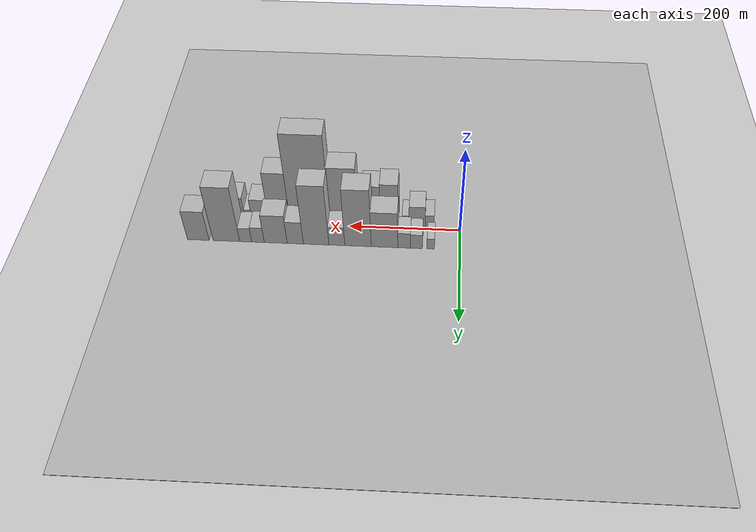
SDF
<?xml version="1.0" encoding="utf-8"?>

<sdf version="1.6">

   <world name="default">

      <gui fullscreen="0">

         <camera name="user_camera">

            <pose>-15 0 4.57585 0 0 0</pose>

            <view_controller>orbit</view_controller>

         </camera>

      </gui>

      <scene>

         <sky>

           <clouds>

             <speed>12</speed>

           </clouds>

         </sky>

         <ambient>0.4 0.4 0.4 1</ambient>

         <background>0.7 0.7 0.7 1</background>

         <shadows>1</shadows>

      </scene>

      <gravity>0 0 -9.8066</gravity>

      <magnetic_field>6e-06 2.3e-05 -4.2e-05</magnetic_field>

      <physics default="0" name="default_physics" type="ode">

         <ode>

            <solver>

               <type>quick</type>

               <iters>10</iters>

               <sor>1.0</sor>

               <use_dynamic_moi_rescaling>0</use_dynamic_moi_rescaling>

            </solver>

            <constraints>

               <cfm>0</cfm>

               <erp>0.2</erp>

               <contact_max_correcting_vel>100</contact_max_correcting_vel>

               <contact_surface_layer>0.001</contact_surface_layer>

            </constraints>

         </ode>

         <max_step_size>0.004</max_step_size>

         <real_time_factor>1</real_time_factor>

         <real_time_update_rate>250</real_time_update_rate>

      </physics>

      <light name="sun" type="directional">

         <cast_shadows>1</cast_shadows>

         <pose>0 0 10 0 0 0</pose>

         <diffuse>0.8 0.8 0.8 1</diffuse>

         <specular>0.2 0.2 0.2 1</specular>

         <attenuation>

            <range>1000</range>

            <constant>0.9</constant>

            <linear>0.01</linear>

            <quadratic>0.001</quadratic>

         </attenuation>

         <direction>-0.5 0.1 -0.9</direction>

      </light>

      <include>

         <name>ground_plane_1</name>

         <uri>model://HANNAS_ground_plane</uri>

         <pose>0 0 0  0 0 0</pose>

      </include>

      <include>

         <name>ground_plane_2</name>

         <uri>model://HANNAS_ground_plane</uri>

         <pose>100 0 0  0 0 0</pose>

      </include>

      <model name="building_1">

         <static>1</static>

         <pose frame="">51.7363 26.0000 0 0.000000 0.000000 1.570796</pose>

         <link name="link">

            <pose frame="">0 0 13.50 0 0 0</pose>

            <collision name="collision">

               <geometry>

                  <box>

                     <size>40.0000 13.4727 27.0000</size>

                  </box>

               </geometry>

               <max_contacts>10</max_contacts>

               <surface>

                  <contact>

                     <ode/>

                  </contact>

                  <bounce/>

                  <friction>

                     <torsional>

                        <ode/>

                     </torsional>

                     <ode/>

                  </friction>

               </surface>

            </collision>

            <visual name="visual">

               <cast_shadows>0</cast_shadows>

               <geometry>

                  <box>

                     <size>40.0000 13.4727 27.0000</size>

                  </box>

               </geometry>

               <material>

                  <script>

                     <uri>model://HANNAS_wall/materials/scripts</uri>

                     <uri>model://HANNAS_wall/materials/textures</uri>

                     <name>vrc/HANNAS_wall</name>

                  </script>

               </material>

            </visual>

            <self_collide>0</self_collide>

            <enable_wind>0</enable_wind>

            <kinematic>0</kinematic>

         </link>

      </model>

      <model name="building_2">

         <static>1</static>

         <pose frame="">77.1614 26.0000 0 0.000000 0.000000 1.570796</pose>

         <link name="link">

            <pose frame="">0 0 18.00 0 0 0</pose>

            <collision name="collision">

               <geometry>

                  <box>

                     <size>40.0000 21.3774 36.0000</size>

                  </box>

               </geometry>

               <max_contacts>10</max_contacts>

               <surface>

                  <contact>

                     <ode/>

                  </contact>

                  <bounce/>

                  <friction>

                     <torsional>

                        <ode/>

                     </torsional>

                     <ode/>

                  </friction>

               </surface>

            </collision>

            <visual name="visual">

               <cast_shadows>0</cast_shadows>

               <geometry>

                  <box>

                     <size>40.0000 21.3774 36.0000</size>

                  </box>

               </geometry>

               <material>

                  <script>

                     <uri>model://HANNAS_wall/materials/scripts</uri>

                     <uri>model://HANNAS_wall/materials/textures</uri>

                     <name>vrc/HANNAS_wall</name>

                  </script>

               </material>

            </visual>

            <self_collide>0</self_collide>

            <enable_wind>0</enable_wind>

            <kinematic>0</kinematic>

         </link>

      </model>

      <model name="building_3">

         <static>1</static>

         <pose frame="">99.0609 26.0000 0 0.000000 0.000000 1.570796</pose>

         <link name="link">

            <pose frame="">0 0 19.50 0 0 0</pose>

            <collision name="collision">

               <geometry>

                  <box>

                     <size>40.0000 22.4216 39.0000</size>

                  </box>

               </geometry>

               <max_contacts>10</max_contacts>

               <surface>

                  <contact>

                     <ode/>

                  </contact>

                  <bounce/>

                  <friction>

                     <torsional>

                        <ode/>

                     </torsional>

                     <ode/>

                  </friction>

               </surface>

            </collision>

            <visual name="visual">

               <cast_shadows>0</cast_shadows>

               <geometry>

                  <box>

                     <size>40.0000 22.4216 39.0000</size>

                  </box>

               </geometry>

               <material>

                  <script>

                     <uri>model://HANNAS_wall/materials/scripts</uri>

                     <uri>model://HANNAS_wall/materials/textures</uri>

                     <name>vrc/HANNAS_wall</name>

                  </script>

               </material>

            </visual>

            <self_collide>0</self_collide>

            <enable_wind>0</enable_wind>

            <kinematic>0</kinematic>

         </link>

      </model>

      <model name="building_4">

         <static>1</static>

         <pose frame="">133.7354 26.0000 0 0.000000 0.000000 1.570796</pose>

         <link name="link">

            <pose frame="">0 0 45.00 0 0 0</pose>

            <collision name="collision">

               <geometry>

                  <box>

                     <size>40.0000 46.9274 90.0000</size>

                  </box>

               </geometry>

               <max_contacts>10</max_contacts>

               <surface>

                  <contact>

                     <ode/>

                  </contact>

                  <bounce/>

                  <friction>

                     <torsional>

                        <ode/>

                     </torsional>

                     <ode/>

                  </friction>

               </surface>

            </collision>

            <visual name="visual">

               <cast_shadows>0</cast_shadows>

               <geometry>

                  <box>

                     <size>40.0000 46.9274 90.0000</size>

                  </box>

               </geometry>

               <material>

                  <script>

                     <uri>model://HANNAS_wall/materials/scripts</uri>

                     <uri>model://HANNAS_wall/materials/textures</uri>

                     <name>vrc/HANNAS_wall</name>

                  </script>

               </material>

            </visual>

            <self_collide>0</self_collide>

            <enable_wind>0</enable_wind>

            <kinematic>0</kinematic>

         </link>

      </model>

      <model name="building_5">

         <static>1</static>

         <pose frame="">180.7407 26.0000 0 0.000000 0.000000 1.570796</pose>

         <link name="link">

            <pose frame="">0 0 72.00 0 0 0</pose>

            <collision name="collision">

               <geometry>

                  <box>

                     <size>40.0000 47.0832 144.0000</size>

                  </box>

               </geometry>

               <max_contacts>10</max_contacts>

               <surface>

                  <contact>

                     <ode/>

                  </contact>

                  <bounce/>

                  <friction>

                     <torsional>

                        <ode/>

                     </torsional>

                     <ode/>

                  </friction>

               </surface>

            </collision>

            <visual name="visual">

               <cast_shadows>0</cast_shadows>

               <geometry>

                  <box>

                     <size>40.0000 47.0832 144.0000</size>

                  </box>

               </geometry>

               <material>

                  <script>

                     <uri>model://HANNAS_wall/materials/scripts</uri>

                     <uri>model://HANNAS_wall/materials/textures</uri>

                     <name>vrc/HANNAS_wall</name>

                  </script>

               </material>

            </visual>

            <self_collide>0</self_collide>

            <enable_wind>0</enable_wind>

            <kinematic>0</kinematic>

         </link>

      </model>

      <model name="building_6">

         <static>1</static>

         <pose frame="">218.4508 26.0000 0 0.000000 0.000000 1.570796</pose>

         <link name="link">

            <pose frame="">0 0 24.00 0 0 0</pose>

            <collision name="collision">

               <geometry>

                  <box>

                     <size>40.0000 28.3369 48.0000</size>

                  </box>

               </geometry>

               <max_contacts>10</max_contacts>

               <surface>

                  <contact>

                     <ode/>

                  </contact>

                  <bounce/>

                  <friction>

                     <torsional>

                        <ode/>

                     </torsional>

                     <ode/>

                  </friction>

               </surface>

            </collision>

            <visual name="visual">

               <cast_shadows>0</cast_shadows>

               <geometry>

                  <box>

                     <size>40.0000 28.3369 48.0000</size>

                  </box>

               </geometry>

               <material>

                  <script>

                     <uri>model://HANNAS_wall/materials/scripts</uri>

                     <uri>model://HANNAS_wall/materials/textures</uri>

                     <name>vrc/HANNAS_wall</name>

                  </script>

               </material>

            </visual>

            <self_collide>0</self_collide>

            <enable_wind>0</enable_wind>

            <kinematic>0</kinematic>

         </link>

      </model>

      <model name="building_7">

         <static>1</static>

         <pose frame="">255.4057 26.0000 0 0.000000 0.000000 1.570796</pose>

         <link name="link">

            <pose frame="">0 0 75.00 0 0 0</pose>

            <collision name="collision">

               <geometry>

                  <box>

                     <size>40.0000 45.5729 150.0000</size>

                  </box>

               </geometry>

               <max_contacts>10</max_contacts>

               <surface>

                  <contact>

                     <ode/>

                  </contact>

                  <bounce/>

                  <friction>

                     <torsional>

                        <ode/>

                     </torsional>

                     <ode/>

                  </friction>

               </surface>

            </collision>

            <visual name="visual">

               <cast_shadows>0</cast_shadows>

               <geometry>

                  <box>

                     <size>40.0000 45.5729 150.0000</size>

                  </box>

               </geometry>

               <material>

                  <script>

                     <uri>model://HANNAS_wall/materials/scripts</uri>

                     <uri>model://HANNAS_wall/materials/textures</uri>

                     <name>vrc/HANNAS_wall</name>

                  </script>

               </material>

            </visual>

            <self_collide>0</self_collide>

            <enable_wind>0</enable_wind>

            <kinematic>0</kinematic>

         </link>

      </model>

      <model name="building_8">

         <static>1</static>

         <pose frame="">292.6809 26.0000 0 0.000000 0.000000 1.570796</pose>

         <link name="link">

            <pose frame="">0 0 28.50 0 0 0</pose>

            <collision name="collision">

               <geometry>

                  <box>

                     <size>40.0000 28.9775 57.0000</size>

                  </box>

               </geometry>

               <max_contacts>10</max_contacts>

               <surface>

                  <contact>

                     <ode/>

                  </contact>

                  <bounce/>

                  <friction>

                     <torsional>

                        <ode/>

                     </torsional>

                     <ode/>

                  </friction>

               </surface>

            </collision>

            <visual name="visual">

               <cast_shadows>0</cast_shadows>

               <geometry>

                  <box>

                     <size>40.0000 28.9775 57.0000</size>

                  </box>

               </geometry>

               <material>

                  <script>

                     <uri>model://HANNAS_wall/materials/scripts</uri>

                     <uri>model://HANNAS_wall/materials/textures</uri>

                     <name>vrc/HANNAS_wall</name>

                  </script>

               </material>

            </visual>

            <self_collide>0</self_collide>

            <enable_wind>0</enable_wind>

            <kinematic>0</kinematic>

         </link>

      </model>

      <model name="building_9">

         <static>1</static>

         <pose frame="">327.7325 26.0000 0 0.000000 0.000000 1.570796</pose>

         <link name="link">

            <pose frame="">0 0 36.00 0 0 0</pose>

            <collision name="collision">

               <geometry>

                  <box>

                     <size>40.0000 41.1257 72.0000</size>

                  </box>

               </geometry>

               <max_contacts>10</max_contacts>

               <surface>

                  <contact>

                     <ode/>

                  </contact>

                  <bounce/>

                  <friction>

                     <torsional>

                        <ode/>

                     </torsional>

                     <ode/>

                  </friction>

               </surface>

            </collision>

            <visual name="visual">

               <cast_shadows>0</cast_shadows>

               <geometry>

                  <box>

                     <size>40.0000 41.1257 72.0000</size>

                  </box>

               </geometry>

               <material>

                  <script>

                     <uri>model://HANNAS_wall/materials/scripts</uri>

                     <uri>model://HANNAS_wall/materials/textures</uri>

                     <name>vrc/HANNAS_wall</name>

                  </script>

               </material>

            </visual>

            <self_collide>0</self_collide>

            <enable_wind>0</enable_wind>

            <kinematic>0</kinematic>

         </link>

      </model>

      <model name="building_10">

         <static>1</static>

         <pose frame="">359.5057 26.0000 0 0.000000 0.000000 1.570796</pose>

         <link name="link">

            <pose frame="">0 0 19.50 0 0 0</pose>

            <collision name="collision">

               <geometry>

                  <box>

                     <size>40.0000 22.4209 39.0000</size>

                  </box>

               </geometry>

               <max_contacts>10</max_contacts>

               <surface>

                  <contact>

                     <ode/>

                  </contact>

                  <bounce/>

                  <friction>

                     <torsional>

                        <ode/>

                     </torsional>

                     <ode/>

                  </friction>

               </surface>

            </collision>

            <visual name="visual">

               <cast_shadows>0</cast_shadows>

               <geometry>

                  <box>

                     <size>40.0000 22.4209 39.0000</size>

                  </box>

               </geometry>

               <material>

                  <script>

                     <uri>model://HANNAS_wall/materials/scripts</uri>

                     <uri>model://HANNAS_wall/materials/textures</uri>

                     <name>vrc/HANNAS_wall</name>

                  </script>

               </material>

            </visual>

            <self_collide>0</self_collide>

            <enable_wind>0</enable_wind>

            <kinematic>0</kinematic>

         </link>

      </model>

      <model name="building_11">

         <static>1</static>

         <pose frame="">381.4786 26.0000 0 0.000000 0.000000 1.570796</pose>

         <link name="link">

            <pose frame="">0 0 18.00 0 0 0</pose>

            <collision name="collision">

               <geometry>

                  <box>

                     <size>40.0000 21.5248 36.0000</size>

                  </box>

               </geometry>

               <max_contacts>10</max_contacts>

               <surface>

                  <contact>

                     <ode/>

                  </contact>

                  <bounce/>

                  <friction>

                     <torsional>

                        <ode/>

                     </torsional>

                     <ode/>

                  </friction>

               </surface>

            </collision>

            <visual name="visual">

               <cast_shadows>0</cast_shadows>

               <geometry>

                  <box>

                     <size>40.0000 21.5248 36.0000</size>

                  </box>

               </geometry>

               <material>

                  <script>

                     <uri>model://HANNAS_wall/materials/scripts</uri>

                     <uri>model://HANNAS_wall/materials/textures</uri>

                     <name>vrc/HANNAS_wall</name>

                  </script>

               </material>

            </visual>

            <self_collide>0</self_collide>

            <enable_wind>0</enable_wind>

            <kinematic>0</kinematic>

         </link>

      </model>

      <model name="building_12">

         <static>1</static>

         <pose frame="">416.2703 26.0000 0 0.000000 0.000000 1.570796</pose>

         <link name="link">

            <pose frame="">0 0 69.00 0 0 0</pose>

            <collision name="collision">

               <geometry>

                  <box>

                     <size>40.0000 48.0588 138.0000</size>

                  </box>

               </geometry>

               <max_contacts>10</max_contacts>

               <surface>

                  <contact>

                     <ode/>

                  </contact>

                  <bounce/>

                  <friction>

                     <torsional>

                        <ode/>

                     </torsional>

                     <ode/>

                  </friction>

               </surface>

            </collision>

            <visual name="visual">

               <cast_shadows>0</cast_shadows>

               <geometry>

                  <box>

                     <size>40.0000 48.0588 138.0000</size>

                  </box>

               </geometry>

               <material>

                  <script>

                     <uri>model://HANNAS_wall/materials/scripts</uri>

                     <uri>model://HANNAS_wall/materials/textures</uri>

                     <name>vrc/HANNAS_wall</name>

                  </script>

               </material>

            </visual>

            <self_collide>0</self_collide>

            <enable_wind>0</enable_wind>

            <kinematic>0</kinematic>

         </link>

      </model>

      <model name="building_13">

         <static>1</static>

         <pose frame="">466.8301 26.0000 0 0.000000 0.000000 1.570796</pose>

         <link name="link">

            <pose frame="">0 0 37.50 0 0 0</pose>

            <collision name="collision">

               <geometry>

                  <box>

                     <size>40.0000 39.0607 75.0000</size>

                  </box>

               </geometry>

               <max_contacts>10</max_contacts>

               <surface>

                  <contact>

                     <ode/>

                  </contact>

                  <bounce/>

                  <friction>

                     <torsional>

                        <ode/>

                     </torsional>

                     <ode/>

                  </friction>

               </surface>

            </collision>

            <visual name="visual">

               <cast_shadows>0</cast_shadows>

               <geometry>

                  <box>

                     <size>40.0000 39.0607 75.0000</size>

                  </box>

               </geometry>

               <material>

                  <script>

                     <uri>model://HANNAS_wall/materials/scripts</uri>

                     <uri>model://HANNAS_wall/materials/textures</uri>

                     <name>vrc/HANNAS_wall</name>

                  </script>

               </material>

            </visual>

            <self_collide>0</self_collide>

            <enable_wind>0</enable_wind>

            <kinematic>0</kinematic>

         </link>

      </model>

      <model name="building_14">

         <static>1</static>

         <pose frame="">55.1821 -26.0000 0 0.000000 0.000000 1.570796</pose>

         <link name="link">

            <pose frame="">0 0 15.00 0 0 0</pose>

            <collision name="collision">

               <geometry>

                  <box>

                     <size>40.0000 16.3642 30.0000</size>

                  </box>

               </geometry>

               <max_contacts>10</max_contacts>

               <surface>

                  <contact>

                     <ode/>

                  </contact>

                  <bounce/>

                  <friction>

                     <torsional>

                        <ode/>

                     </torsional>

                     <ode/>

                  </friction>

               </surface>

            </collision>

            <visual name="visual">

               <cast_shadows>0</cast_shadows>

               <geometry>

                  <box>

                     <size>40.0000 16.3642 30.0000</size>

                  </box>

               </geometry>

               <material>

                  <script>

                     <uri>model://HANNAS_wall/materials/scripts</uri>

                     <uri>model://HANNAS_wall/materials/textures</uri>

                     <name>vrc/HANNAS_wall</name>

                  </script>

               </material>

            </visual>

            <self_collide>0</self_collide>

            <enable_wind>0</enable_wind>

            <kinematic>0</kinematic>

         </link>

      </model>

      <model name="building_15">

         <static>1</static>

         <pose frame="">77.8961 -26.0000 0 0.000000 0.000000 1.570796</pose>

         <link name="link">

            <pose frame="">0 0 25.50 0 0 0</pose>

            <collision name="collision">

               <geometry>

                  <box>

                     <size>40.0000 29.0638 51.0000</size>

                  </box>

               </geometry>

               <max_contacts>10</max_contacts>

               <surface>

                  <contact>

                     <ode/>

                  </contact>

                  <bounce/>

                  <friction>

                     <torsional>

                        <ode/>

                     </torsional>

                     <ode/>

                  </friction>

               </surface>

            </collision>

            <visual name="visual">

               <cast_shadows>0</cast_shadows>

               <geometry>

                  <box>

                     <size>40.0000 29.0638 51.0000</size>

                  </box>

               </geometry>

               <material>

                  <script>

                     <uri>model://HANNAS_wall/materials/scripts</uri>

                     <uri>model://HANNAS_wall/materials/textures</uri>

                     <name>vrc/HANNAS_wall</name>

                  </script>

               </material>

            </visual>

            <self_collide>0</self_collide>

            <enable_wind>0</enable_wind>

            <kinematic>0</kinematic>

         </link>

      </model>

      <model name="building_16">

         <static>1</static>

         <pose frame="">98.8204 -26.0000 0 0.000000 0.000000 1.570796</pose>

         <link name="link">

            <pose frame="">0 0 13.50 0 0 0</pose>

            <collision name="collision">

               <geometry>

                  <box>

                     <size>40.0000 12.7849 27.0000</size>

                  </box>

               </geometry>

               <max_contacts>10</max_contacts>

               <surface>

                  <contact>

                     <ode/>

                  </contact>

                  <bounce/>

                  <friction>

                     <torsional>

                        <ode/>

                     </torsional>

                     <ode/>

                  </friction>

               </surface>

            </collision>

            <visual name="visual">

               <cast_shadows>0</cast_shadows>

               <geometry>

                  <box>

                     <size>40.0000 12.7849 27.0000</size>

                  </box>

               </geometry>

               <material>

                  <script>

                     <uri>model://HANNAS_wall/materials/scripts</uri>

                     <uri>model://HANNAS_wall/materials/textures</uri>

                     <name>vrc/HANNAS_wall</name>

                  </script>

               </material>

            </visual>

            <self_collide>0</self_collide>

            <enable_wind>0</enable_wind>

            <kinematic>0</kinematic>

         </link>

      </model>

      <model name="building_17">

         <static>1</static>

         <pose frame="">128.4524 -26.0000 0 0.000000 0.000000 1.570796</pose>

         <link name="link">

            <pose frame="">0 0 52.50 0 0 0</pose>

            <collision name="collision">

               <geometry>

                  <box>

                     <size>40.0000 32.4790 105.0000</size>

                  </box>

               </geometry>

               <max_contacts>10</max_contacts>

               <surface>

                  <contact>

                     <ode/>

                  </contact>

                  <bounce/>

                  <friction>

                     <torsional>

                        <ode/>

                     </torsional>

                     <ode/>

                  </friction>

               </surface>

            </collision>

            <visual name="visual">

               <cast_shadows>0</cast_shadows>

               <geometry>

                  <box>

                     <size>40.0000 32.4790 105.0000</size>

                  </box>

               </geometry>

               <material>

                  <script>

                     <uri>model://HANNAS_wall/materials/scripts</uri>

                     <uri>model://HANNAS_wall/materials/textures</uri>

                     <name>vrc/HANNAS_wall</name>

                  </script>

               </material>

            </visual>

            <self_collide>0</self_collide>

            <enable_wind>0</enable_wind>

            <kinematic>0</kinematic>

         </link>

      </model>

      <model name="building_18">

         <static>1</static>

         <pose frame="">160.8812 -26.0000 0 0.000000 0.000000 1.570796</pose>

         <link name="link">

            <pose frame="">0 0 49.50 0 0 0</pose>

            <collision name="collision">

               <geometry>

                  <box>

                     <size>40.0000 32.3787 99.0000</size>

                  </box>

               </geometry>

               <max_contacts>10</max_contacts>

               <surface>

                  <contact>

                     <ode/>

                  </contact>

                  <bounce/>

                  <friction>

                     <torsional>

                        <ode/>

                     </torsional>

                     <ode/>

                  </friction>

               </surface>

            </collision>

            <visual name="visual">

               <cast_shadows>0</cast_shadows>

               <geometry>

                  <box>

                     <size>40.0000 32.3787 99.0000</size>

                  </box>

               </geometry>

               <material>

                  <script>

                     <uri>model://HANNAS_wall/materials/scripts</uri>

                     <uri>model://HANNAS_wall/materials/textures</uri>

                     <name>vrc/HANNAS_wall</name>

                  </script>

               </material>

            </visual>

            <self_collide>0</self_collide>

            <enable_wind>0</enable_wind>

            <kinematic>0</kinematic>

         </link>

      </model>

      <model name="building_19">

         <static>1</static>

         <pose frame="">211.0666 -26.0000 0 0.000000 0.000000 1.570796</pose>

         <link name="link">

            <pose frame="">0 0 70.50 0 0 0</pose>

            <collision name="collision">

               <geometry>

                  <box>

                     <size>40.0000 49.9922 141.0000</size>

                  </box>

               </geometry>

               <max_contacts>10</max_contacts>

               <surface>

                  <contact>

                     <ode/>

                  </contact>

                  <bounce/>

                  <friction>

                     <torsional>

                        <ode/>

                     </torsional>

                     <ode/>

                  </friction>

               </surface>

            </collision>

            <visual name="visual">

               <cast_shadows>0</cast_shadows>

               <geometry>

                  <box>

                     <size>40.0000 49.9922 141.0000</size>

                  </box>

               </geometry>

               <material>

                  <script>

                     <uri>model://HANNAS_wall/materials/scripts</uri>

                     <uri>model://HANNAS_wall/materials/textures</uri>

                     <name>vrc/HANNAS_wall</name>

                  </script>

               </material>

            </visual>

            <self_collide>0</self_collide>

            <enable_wind>0</enable_wind>

            <kinematic>0</kinematic>

         </link>

      </model>

      <model name="building_20">

         <static>1</static>

         <pose frame="">272.6296 -26.0000 0 0.000000 0.000000 1.570796</pose>

         <link name="link">

            <pose frame="">0 0 108.00 0 0 0</pose>

            <collision name="collision">

               <geometry>

                  <box>

                     <size>40.0000 73.1338 216.0000</size>

                  </box>

               </geometry>

               <max_contacts>10</max_contacts>

               <surface>

                  <contact>

                     <ode/>

                  </contact>

                  <bounce/>

                  <friction>

                     <torsional>

                        <ode/>

                     </torsional>

                     <ode/>

                  </friction>

               </surface>

            </collision>

            <visual name="visual">

               <cast_shadows>0</cast_shadows>

               <geometry>

                  <box>

                     <size>40.0000 73.1338 216.0000</size>

                  </box>

               </geometry>

               <material>

                  <script>

                     <uri>model://HANNAS_wall/materials/scripts</uri>

                     <uri>model://HANNAS_wall/materials/textures</uri>

                     <name>vrc/HANNAS_wall</name>

                  </script>

               </material>

            </visual>

            <self_collide>0</self_collide>

            <enable_wind>0</enable_wind>

            <kinematic>0</kinematic>

         </link>

      </model>

      <model name="building_21">

         <static>1</static>

         <pose frame="">328.7827 -26.0000 0 0.000000 0.000000 1.570796</pose>

         <link name="link">

            <pose frame="">0 0 61.50 0 0 0</pose>

            <collision name="collision">

               <geometry>

                  <box>

                     <size>40.0000 39.1723 123.0000</size>

                  </box>

               </geometry>

               <max_contacts>10</max_contacts>

               <surface>

                  <contact>

                     <ode/>

                  </contact>

                  <bounce/>

                  <friction>

                     <torsional>

                        <ode/>

                     </torsional>

                     <ode/>

                  </friction>

               </surface>

            </collision>

            <visual name="visual">

               <cast_shadows>0</cast_shadows>

               <geometry>

                  <box>

                     <size>40.0000 39.1723 123.0000</size>

                  </box>

               </geometry>

               <material>

                  <script>

                     <uri>model://HANNAS_wall/materials/scripts</uri>

                     <uri>model://HANNAS_wall/materials/textures</uri>

                     <name>vrc/HANNAS_wall</name>

                  </script>

               </material>

            </visual>

            <self_collide>0</self_collide>

            <enable_wind>0</enable_wind>

            <kinematic>0</kinematic>

         </link>

      </model>

      <model name="building_22">

         <static>1</static>

         <pose frame="">363.6722 -26.0000 0 0.000000 0.000000 1.570796</pose>

         <link name="link">

            <pose frame="">0 0 27.00 0 0 0</pose>

            <collision name="collision">

               <geometry>

                  <box>

                     <size>40.0000 30.6067 54.0000</size>

                  </box>

               </geometry>

               <max_contacts>10</max_contacts>

               <surface>

                  <contact>

                     <ode/>

                  </contact>

                  <bounce/>

                  <friction>

                     <torsional>

                        <ode/>

                     </torsional>

                     <ode/>

                  </friction>

               </surface>

            </collision>

            <visual name="visual">

               <cast_shadows>0</cast_shadows>

               <geometry>

                  <box>

                     <size>40.0000 30.6067 54.0000</size>

                  </box>

               </geometry>

               <material>

                  <script>

                     <uri>model://HANNAS_wall/materials/scripts</uri>

                     <uri>model://HANNAS_wall/materials/textures</uri>

                     <name>vrc/HANNAS_wall</name>

                  </script>

               </material>

            </visual>

            <self_collide>0</self_collide>

            <enable_wind>0</enable_wind>

            <kinematic>0</kinematic>

         </link>

      </model>

      <model name="building_23">

         <static>1</static>

         <pose frame="">385.3361 -26.0000 0 0.000000 0.000000 1.570796</pose>

         <link name="link">

            <pose frame="">0 0 13.50 0 0 0</pose>

            <collision name="collision">

               <geometry>

                  <box>

                     <size>40.0000 12.7210 27.0000</size>

                  </box>

               </geometry>

               <max_contacts>10</max_contacts>

               <surface>

                  <contact>

                     <ode/>

                  </contact>

                  <bounce/>

                  <friction>

                     <torsional>

                        <ode/>

                     </torsional>

                     <ode/>

                  </friction>

               </surface>

            </collision>

            <visual name="visual">

               <cast_shadows>0</cast_shadows>

               <geometry>

                  <box>

                     <size>40.0000 12.7210 27.0000</size>

                  </box>

               </geometry>

               <material>

                  <script>

                     <uri>model://HANNAS_wall/materials/scripts</uri>

                     <uri>model://HANNAS_wall/materials/textures</uri>

                     <name>vrc/HANNAS_wall</name>

                  </script>

               </material>

            </visual>

            <self_collide>0</self_collide>

            <enable_wind>0</enable_wind>

            <kinematic>0</kinematic>

         </link>

      </model>

      <model name="building_24">

         <static>1</static>

         <pose frame="">407.8438 -26.0000 0 0.000000 0.000000 1.570796</pose>

         <link name="link">

            <pose frame="">0 0 28.50 0 0 0</pose>

            <collision name="collision">

               <geometry>

                  <box>

                     <size>40.0000 32.2945 57.0000</size>

                  </box>

               </geometry>

               <max_contacts>10</max_contacts>

               <surface>

                  <contact>

                     <ode/>

                  </contact>

                  <bounce/>

                  <friction>

                     <torsional>

                        <ode/>

                     </torsional>

                     <ode/>

                  </friction>

               </surface>

            </collision>

            <visual name="visual">

               <cast_shadows>0</cast_shadows>

               <geometry>

                  <box>

                     <size>40.0000 32.2945 57.0000</size>

                  </box>

               </geometry>

               <material>

                  <script>

                     <uri>model://HANNAS_wall/materials/scripts</uri>

                     <uri>model://HANNAS_wall/materials/textures</uri>

                     <name>vrc/HANNAS_wall</name>

                  </script>

               </material>

            </visual>

            <self_collide>0</self_collide>

            <enable_wind>0</enable_wind>

            <kinematic>0</kinematic>

         </link>

      </model>

      <model name="building_25">

         <static>1</static>

         <pose frame="">427.6370 -26.0000 0 0.000000 0.000000 1.570796</pose>

         <link name="link">

            <pose frame="">0 0 9.00 0 0 0</pose>

            <collision name="collision">

               <geometry>

                  <box>

                     <size>40.0000 7.2918 18.0000</size>

                  </box>

               </geometry>

               <max_contacts>10</max_contacts>

               <surface>

                  <contact>

                     <ode/>

                  </contact>

                  <bounce/>

                  <friction>

                     <torsional>

                        <ode/>

                     </torsional>

                     <ode/>

                  </friction>

               </surface>

            </collision>

            <visual name="visual">

               <cast_shadows>0</cast_shadows>

               <geometry>

                  <box>

                     <size>40.0000 7.2918 18.0000</size>

                  </box>

               </geometry>

               <material>

                  <script>

                     <uri>model://HANNAS_wall/materials/scripts</uri>

                     <uri>model://HANNAS_wall/materials/textures</uri>

                     <name>vrc/HANNAS_wall</name>

                  </script>

               </material>

            </visual>

            <self_collide>0</self_collide>

            <enable_wind>0</enable_wind>

            <kinematic>0</kinematic>

         </link>

      </model>

      <model name="building_26">

         <static>1</static>

         <pose frame="">442.3390 -26.0000 0 0.000000 0.000000 1.570796</pose>

         <link name="link">

            <pose frame="">0 0 19.50 0 0 0</pose>

            <collision name="collision">

               <geometry>

                  <box>

                     <size>40.0000 22.1123 39.0000</size>

                  </box>

               </geometry>

               <max_contacts>10</max_contacts>

               <surface>

                  <contact>

                     <ode/>

                  </contact>

                  <bounce/>

                  <friction>

                     <torsional>

                        <ode/>

                     </torsional>

                     <ode/>

                  </friction>

               </surface>

            </collision>

            <visual name="visual">

               <cast_shadows>0</cast_shadows>

               <geometry>

                  <box>

                     <size>40.0000 22.1123 39.0000</size>

                  </box>

               </geometry>

               <material>

                  <script>

                     <uri>model://HANNAS_wall/materials/scripts</uri>

                     <uri>model://HANNAS_wall/materials/textures</uri>

                     <name>vrc/HANNAS_wall</name>

                  </script>

               </material>

            </visual>

            <self_collide>0</self_collide>

            <enable_wind>0</enable_wind>

            <kinematic>0</kinematic>

         </link>

      </model>

   </world>

</sdf>

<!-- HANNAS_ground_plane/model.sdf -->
<sdf version="1.4">
<model name="HANNAS_ground_plane">
  <static>true</static>
    <link name="link">
      <collision name="collision">
        <geometry>
          <plane>
            <normal>0 0 1</normal>
            <size>1000 1000</size>
          </plane>
        </geometry>
        <surface>
          <friction>
            <ode>
              <mu>100</mu>
              <mu2>50</mu2>
            </ode>
          </friction>
        </surface>
      </collision>
      <visual name="visual">
        <cast_shadows>false</cast_shadows>
        <geometry>
          <plane>
            <normal>0 0 1</normal>
            <size>1000 1000</size>
          </plane>
        </geometry>
        <material>
          <script>
            <uri>model://HANNAS_ground_plane/materials/scripts/HANNAS_ground_plane.material</uri>
	    <uri>model://HANNAS_ground_plane/materials/textures</uri>
            <name>HANNASGroundPlane/Image</name>
          </script>
        </material>
      </visual>
    </link>
  </model>
</sdf>
